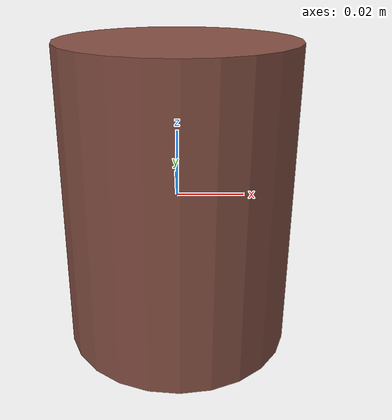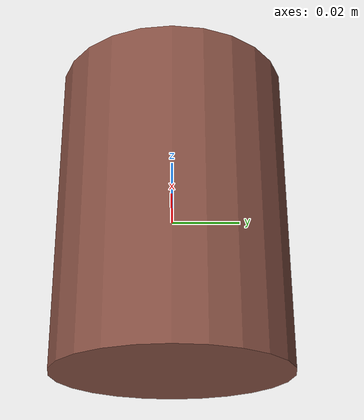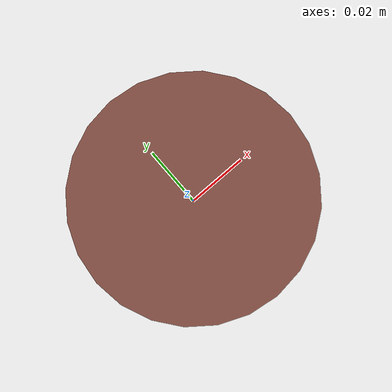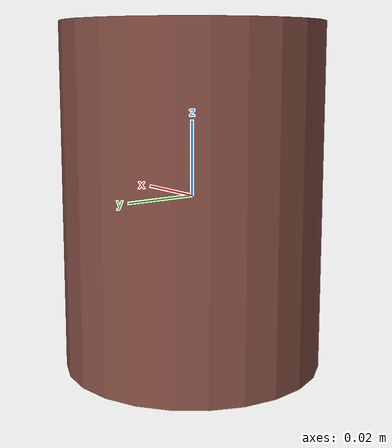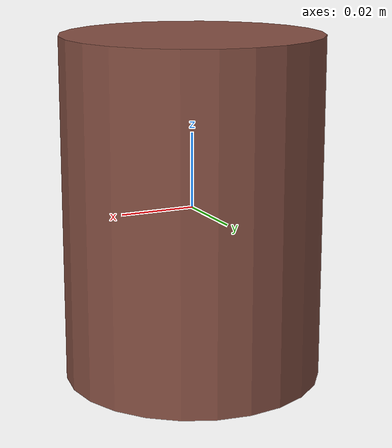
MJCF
<mujoco model="spool2">
  <asset>
    <mesh file="meshes/square_spool.stl" name="spool_mesh" scale="1.8 1.8 1.8"/>
  </asset>
  <worldbody>
    <body>
      <body name="object">
        <geom pos="0 0 0" mesh="spool_mesh" type="mesh" solimp="0.998 0.998 0.001" solref="0.001 1" density="500" friction="0.95 0.3 0.1" group="0" condim="4" rgba="0.52 0.31 0.26 1"/>
      </body>
      <site rgba="0 0 0 0" size="0.005" pos="0 0 -0.045" name="bottom_site"/>
      <site rgba="0 0 0 0" size="0.005" pos="0 0 0.03" name="top_site"/>
      <site rgba="0 0 0 0" size="0.005" pos="0.03 0.03 0" name="horizontal_radius_site"/>
    </body>
  </worldbody>
</mujoco>
